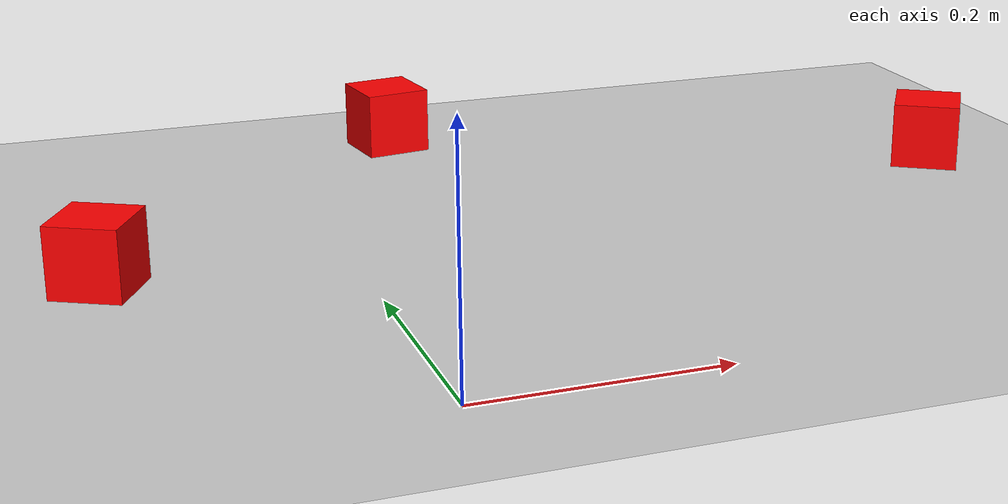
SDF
<?xml version="1.0" ?>
<sdf version="1.6">
  <world name="default">
    <light type="directional" name="sun">
       <cast_shadows>true</cast_shadows>
       <pose>0 0 10 0 0 0</pose>
       <diffuse>0.8 0.8 0.8 1</diffuse>
       <specular>0.2 0.2 0.2 1</specular>
       <attenuation>
            <range>1000</range>
            <constant>0.3</constant>
            <linear>0.01</linear>
            <quadratic>0.001</quadratic>
        </attenuation>
        <direction>-0.5 0.1 -0.9</direction>
    </light>
    <model name="ground_plane">
      <static>true</static>
      <link name="link">
        <collision name="collision">
          <geometry>
            <plane>
              <normal>0 0 1</normal>
            </plane>
          </geometry>
        </collision>
        <visual name="visual">
          <geometry>
            <plane>
              <normal>0 0 1</normal>
              <size>100 100</size>
            </plane>
          </geometry>
          <material>
            <ambient>0.8 0.8 0.8 1</ambient>
            <diffuse>0.8 0.8 0.8 1</diffuse>
            <specular>0.8 0.8 0.8 1</specular>
          </material>
        </visual>
      </link>
    </model>
    <model name="box1">
        <pose >0.58 0.38 0.03 0 0 1</pose>
        <link name="link">
        <inertial>
            <mass>0.2</mass>
            <inertia>
            <ixx>0.166667</ixx>
            <ixy>0</ixy>
            <ixz>0</ixz>
            <iyy>0.166667</iyy>
            <iyz>0</iyz>
            <izz>0.166667</izz>
            </inertia>
        </inertial>
        <visual name="visual">
            <geometry>
            <box>
                <size>0.06 0.06 0.06</size>
            </box>
            </geometry>
            <material>
                <ambient>1 0 0 1</ambient>
                <diffuse>1 0 0 1</diffuse>
                <specular>1 0 0 1</specular>
            </material>
        </visual>
        <collision name="collision">
            <pose frame="">0 0 0 0 0 0</pose>
            <geometry>
            <box>
                <size>0.06 0.06 0.06</size>
            </box>
            </geometry>
            <surface>
                <contact>
                    <ode>
                        <kp>1e+5</kp> <kd>1</kd>
                    </ode>
                </contact>
                <friction>
                    <ode>
                        <mu>100000.0</mu>
                        <mu2>100000.0</mu2>
                    </ode>
                </friction>
            </surface>
        </collision>
        </link>
    </model>
    <model name="box2">
        <pose >0.11 0.6 0.03 0 0 0.15</pose>
        <link name="link">
        <inertial>
            <mass>0.2</mass>
            <inertia>
            <ixx>0.166667</ixx>
            <ixy>0</ixy>
            <ixz>0</ixz>
            <iyy>0.166667</iyy>
            <iyz>0</iyz>
            <izz>0.166667</izz>
            </inertia>
        </inertial>
        <visual name="visual">
            <geometry>
            <box>
                <size>0.06 0.06 0.06</size>
            </box>
            </geometry>
            <material>
                <ambient>1 0 0 1</ambient>
                <diffuse>1 0 0 1</diffuse>
                <specular>1 0 0 1</specular>
            </material>
        </visual>
        <collision name="collision">
            <pose frame="">0 0 0 0 0 0</pose>
            <geometry>
            <box>
                <size>0.06 0.06 0.06</size>
            </box>
            </geometry>
            <surface>
                <contact>
                    <ode>
                        <kp>1e+5</kp> <kd>1</kd>
                    </ode>
                </contact>
                <friction>
                    <ode>
                        <mu>100000.0</mu>
                        <mu2>100000.0</mu2>
                    </ode>
                </friction>
            </surface>
        </collision>
        </link>
    </model>
    <model name="box3">
        <pose >-0.2 0.3 0.03 0 0 -0.5</pose>
        <link name="link">
        <inertial>
            <mass>0.2</mass>
            <inertia>
            <ixx>0.166667</ixx>
            <ixy>0</ixy>
            <ixz>0</ixz>
            <iyy>0.166667</iyy>
            <iyz>0</iyz>
            <izz>0.166667</izz>
            </inertia>
        </inertial>
        <visual name="visual">
            <geometry>
            <box>
                <size>0.06 0.06 0.06</size>
            </box>
            </geometry>
            <material>
                <ambient>1 0 0 1</ambient>
                <diffuse>1 0 0 1</diffuse>
                <specular>1 0 0 1</specular>
            </material>
        </visual>
        <collision name="collision">
            <pose frame="">0 0 0 0 0 0</pose>
            <geometry>
            <box>
                <size>0.06 0.06 0.06</size>
            </box>
            </geometry>
            <surface>
                <contact>
                    <ode>
                        <kp>1e+5</kp> <kd>1</kd>
                    </ode>
                </contact>
                <friction>
                    <ode>
                        <mu>100000.0</mu>
                        <mu2>100000.0</mu2>
                    </ode>
                </friction>
            </surface>
        </collision>
        </link>
    </model>
    <plugin name="gazebo_link_attacher" filename="libgazebo_link_attacher.so"/>
  </world>
</sdf>
